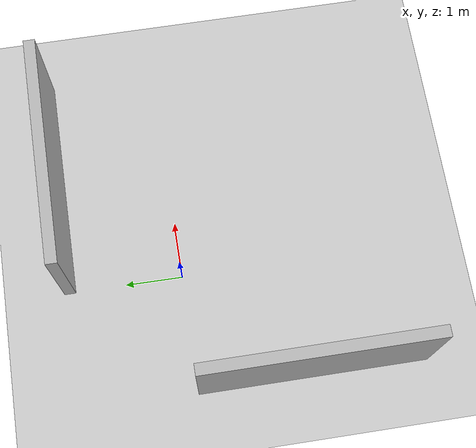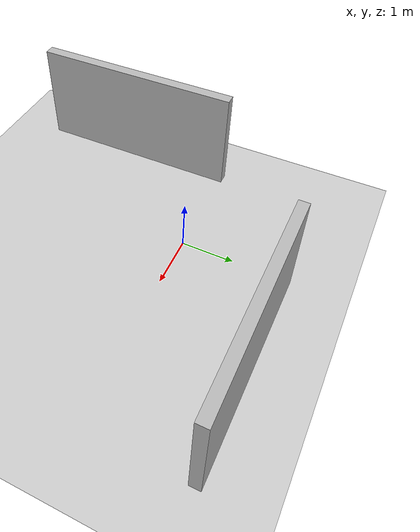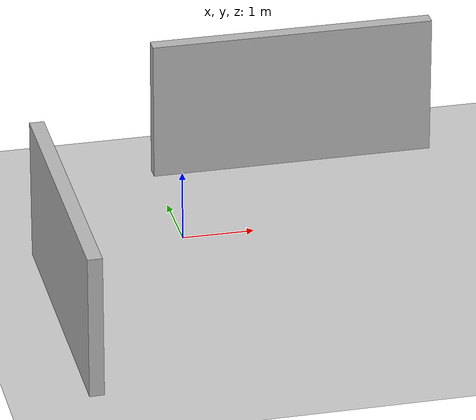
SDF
<?xml version="1.0"?>
<sdf version="1.6">
  <world name="maze_world">
    <include>
      <uri>model://ground_plane</uri>
    </include>

    <include>
      <uri>model://sun</uri>
    </include>

    <!-- Simple walls for exploration -->
    <model name="wall1">
      <static>true</static>
      <link name="link">
        <collision name="collision">
          <geometry>
            <box><size>4 0.2 2</size></box>
          </geometry>
        </collision>
        <visual name="visual">
          <geometry>
            <box><size>4 0.2 2</size></box>
          </geometry>
        </visual>
      </link>
      <pose>2 2 1 0 0 0</pose>
    </model>

    <model name="wall2">
      <static>true</static>
      <link name="link">
        <collision name="collision">
          <geometry>
            <box><size>0.2 4 2</size></box>
          </geometry>
        </collision>
        <visual name="visual">
          <geometry>
            <box><size>0.2 4 2</size></box>
          </geometry>
        </visual>
      </link>
      <pose>-2 -2 1 0 0 0</pose>
    </model>
  </world>
</sdf>
